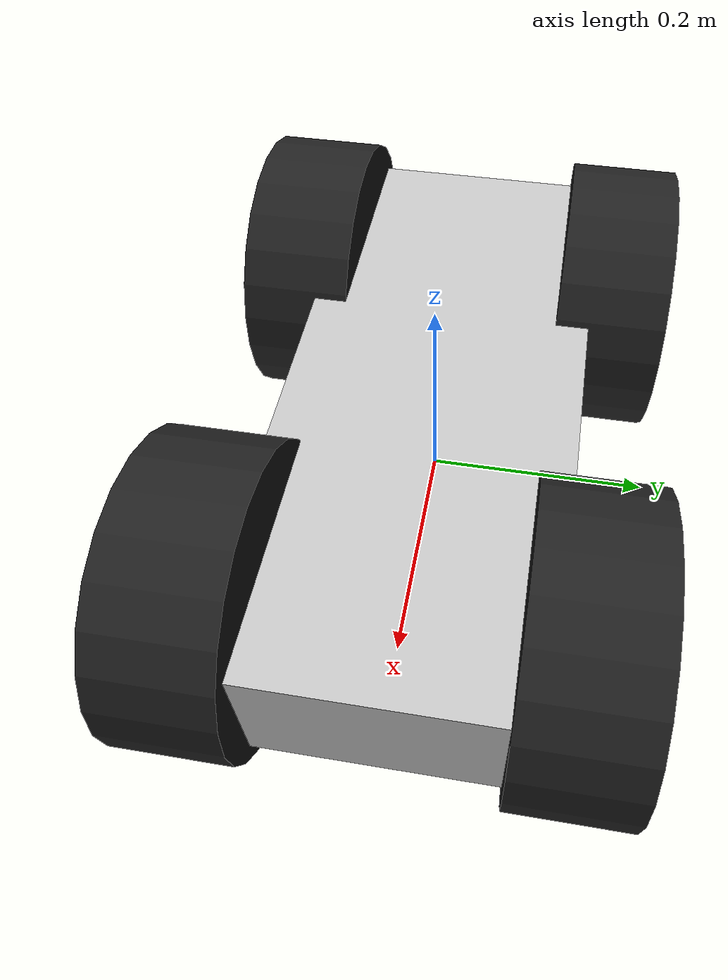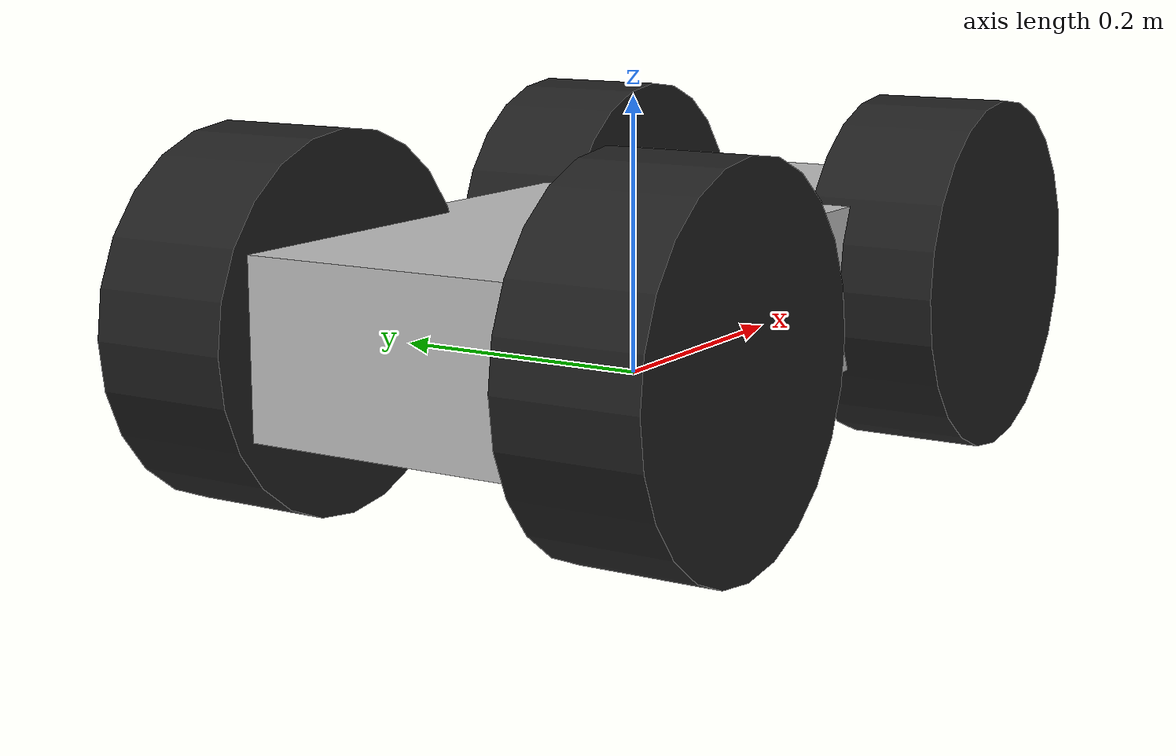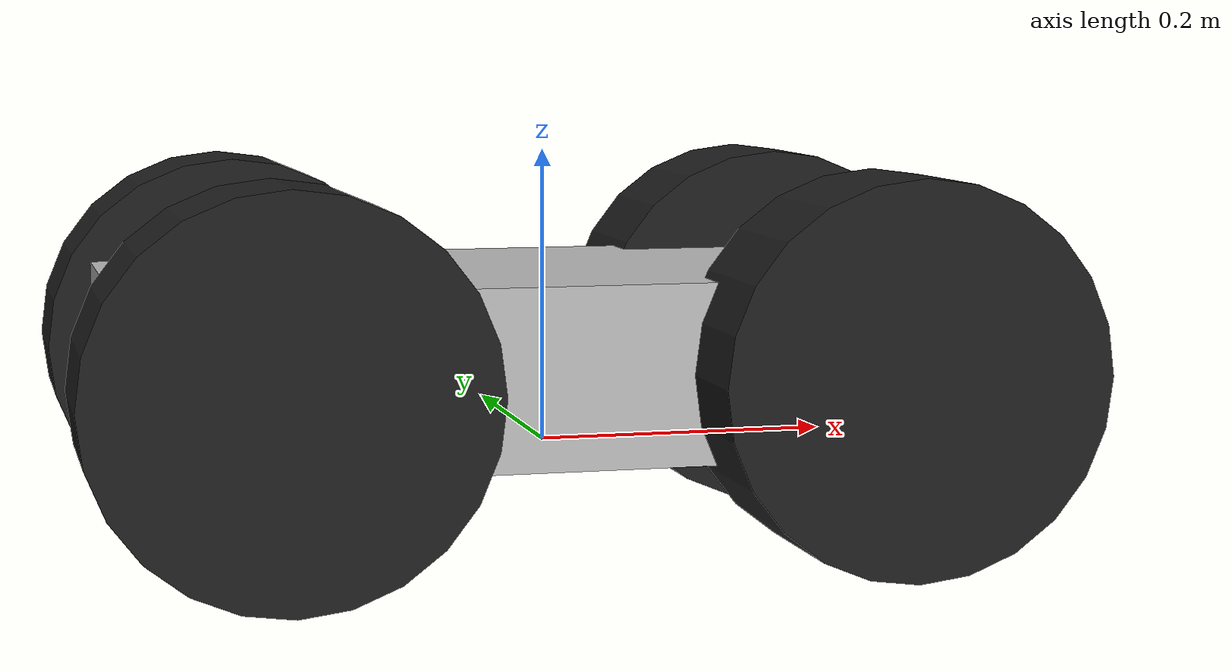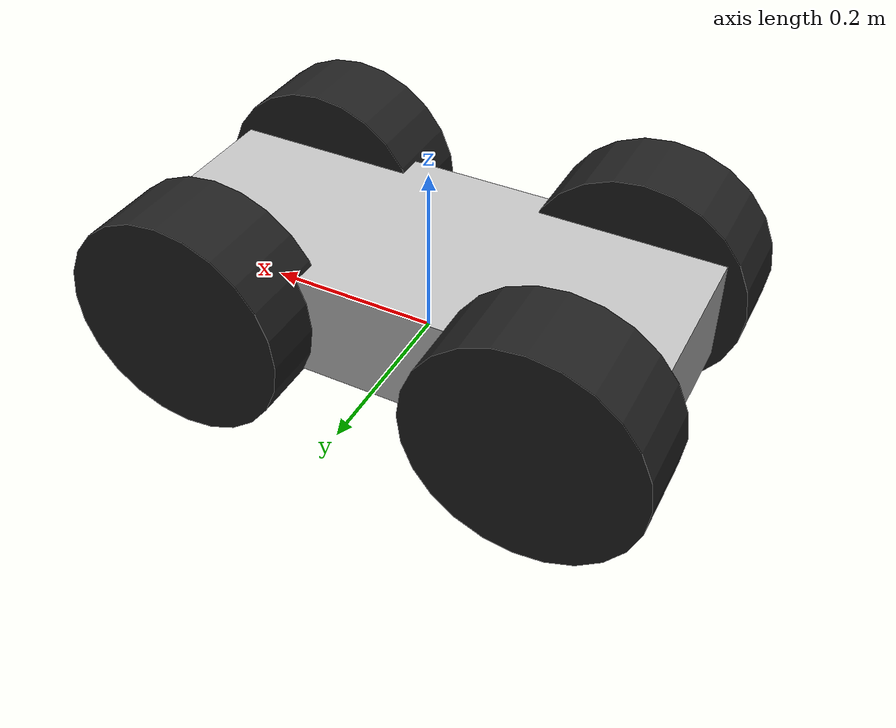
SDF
<sdf version='1.11'>
  <model name='arzhang4'>
    <link name='base_link'>
      <inertial>
        <pose>0 0 0.059999999999999998 0 0 0</pose>
        <mass>12</mass>
        <inertia>
          <ixx>0.20000000000000001</ixx>
          <ixy>0</ixy>
          <ixz>0</ixz>
          <iyy>0.34999999999999998</iyy>
          <iyz>0</iyz>
          <izz>0.45000000000000001</izz>
        </inertia>
      </inertial>
      <collision name='base_link_collision'>
        <pose>0 0 0.059999999999999998 0 0 0</pose>
        <geometry>
          <box>
            <size>0.59999999999999998 0.26000000000000001 0.12</size>
          </box>
        </geometry>
      </collision>
      <visual name='base_link_visual'>
        <pose>0 0 0.059999999999999998 0 0 0</pose>
        <geometry>
          <box>
            <size>0.59999999999999998 0.26000000000000001 0.12</size>
          </box>
        </geometry>
        <material>
          <diffuse>0.75000006 0.75000006 0.75000006 1</diffuse>
          <ambient>0.75000006 0.75000006 0.75000006 1</ambient>
        </material>
      </visual>
    </link>
    <joint name='wheel_fl_joint' type='revolute'>
      <pose relative_to='base_link'>0.20000000000000001 0.14999999999999999 0.059999999999999998 0 0 0</pose>
      <parent>base_link</parent>
      <child>wheel_fl</child>
      <axis>
        <xyz>0 1 0</xyz>
        <limit>
          <lower>-inf</lower>
          <upper>inf</upper>
        </limit>
        <dynamics>
          <spring_reference>0</spring_reference>
          <spring_stiffness>0</spring_stiffness>
        </dynamics>
      </axis>
    </joint>
    <link name='wheel_fl'>
      <pose relative_to='wheel_fl_joint'>0 0 0 0 0 0</pose>
      <inertial>
        <pose>0 0 0 0 0 0</pose>
        <mass>1</mass>
        <inertia>
          <ixx>0.001</ixx>
          <ixy>0</ixy>
          <ixz>0</ixz>
          <iyy>0.001</iyy>
          <iyz>0</iyz>
          <izz>0.001</izz>
        </inertia>
      </inertial>
      <collision name='wheel_fl_collision'>
        <pose>0 0 0 1.5708 0 0</pose>
        <geometry>
          <cylinder>
            <length>0.10000000000000001</length>
            <radius>0.13</radius>
          </cylinder>
        </geometry>
      </collision>
      <visual name='wheel_fl_visual'>
        <pose>0 0 0 1.5708 0 0</pose>
        <geometry>
          <cylinder>
            <length>0.10000000000000001</length>
            <radius>0.13</radius>
          </cylinder>
        </geometry>
        <material>
          <diffuse>0.125 0.125 0.125 1</diffuse>
          <ambient>0.125 0.125 0.125 1</ambient>
        </material>
      </visual>
    </link>
    <joint name='wheel_fr_joint' type='revolute'>
      <pose relative_to='base_link'>0.20000000000000001 -0.14999999999999999 0.059999999999999998 0 0 0</pose>
      <parent>base_link</parent>
      <child>wheel_fr</child>
      <axis>
        <xyz>0 1 0</xyz>
        <limit>
          <lower>-inf</lower>
          <upper>inf</upper>
        </limit>
        <dynamics>
          <spring_reference>0</spring_reference>
          <spring_stiffness>0</spring_stiffness>
        </dynamics>
      </axis>
    </joint>
    <link name='wheel_fr'>
      <pose relative_to='wheel_fr_joint'>0 0 0 0 0 0</pose>
      <inertial>
        <pose>0 0 0 0 0 0</pose>
        <mass>1</mass>
        <inertia>
          <ixx>0.001</ixx>
          <ixy>0</ixy>
          <ixz>0</ixz>
          <iyy>0.001</iyy>
          <iyz>0</iyz>
          <izz>0.001</izz>
        </inertia>
      </inertial>
      <collision name='wheel_fr_collision'>
        <pose>0 0 0 1.5708 0 0</pose>
        <geometry>
          <cylinder>
            <length>0.10000000000000001</length>
            <radius>0.13</radius>
          </cylinder>
        </geometry>
      </collision>
      <visual name='wheel_fr_visual'>
        <pose>0 0 0 1.5708 0 0</pose>
        <geometry>
          <cylinder>
            <length>0.10000000000000001</length>
            <radius>0.13</radius>
          </cylinder>
        </geometry>
        <material>
          <diffuse>0.125 0.125 0.125 1</diffuse>
          <ambient>0.125 0.125 0.125 1</ambient>
        </material>
      </visual>
    </link>
    <joint name='wheel_rl_joint' type='revolute'>
      <pose relative_to='base_link'>-0.20000000000000001 0.14999999999999999 0.059999999999999998 0 0 0</pose>
      <parent>base_link</parent>
      <child>wheel_rl</child>
      <axis>
        <xyz>0 1 0</xyz>
        <limit>
          <lower>-inf</lower>
          <upper>inf</upper>
        </limit>
        <dynamics>
          <spring_reference>0</spring_reference>
          <spring_stiffness>0</spring_stiffness>
        </dynamics>
      </axis>
    </joint>
    <link name='wheel_rl'>
      <pose relative_to='wheel_rl_joint'>0 0 0 0 0 0</pose>
      <inertial>
        <pose>0 0 0 0 0 0</pose>
        <mass>1</mass>
        <inertia>
          <ixx>0.001</ixx>
          <ixy>0</ixy>
          <ixz>0</ixz>
          <iyy>0.001</iyy>
          <iyz>0</iyz>
          <izz>0.001</izz>
        </inertia>
      </inertial>
      <collision name='wheel_rl_collision'>
        <pose>0 0 0 1.5708 0 0</pose>
        <geometry>
          <cylinder>
            <length>0.10000000000000001</length>
            <radius>0.13</radius>
          </cylinder>
        </geometry>
      </collision>
      <visual name='wheel_rl_visual'>
        <pose>0 0 0 1.5708 0 0</pose>
        <geometry>
          <cylinder>
            <length>0.10000000000000001</length>
            <radius>0.13</radius>
          </cylinder>
        </geometry>
        <material>
          <diffuse>0.125 0.125 0.125 1</diffuse>
          <ambient>0.125 0.125 0.125 1</ambient>
        </material>
      </visual>
    </link>
    <joint name='wheel_rr_joint' type='revolute'>
      <pose relative_to='base_link'>-0.20000000000000001 -0.14999999999999999 0.059999999999999998 0 0 0</pose>
      <parent>base_link</parent>
      <child>wheel_rr</child>
      <axis>
        <xyz>0 1 0</xyz>
        <limit>
          <lower>-inf</lower>
          <upper>inf</upper>
        </limit>
        <dynamics>
          <spring_reference>0</spring_reference>
          <spring_stiffness>0</spring_stiffness>
        </dynamics>
      </axis>
    </joint>
    <link name='wheel_rr'>
      <pose relative_to='wheel_rr_joint'>0 0 0 0 0 0</pose>
      <inertial>
        <pose>0 0 0 0 0 0</pose>
        <mass>1</mass>
        <inertia>
          <ixx>0.001</ixx>
          <ixy>0</ixy>
          <ixz>0</ixz>
          <iyy>0.001</iyy>
          <iyz>0</iyz>
          <izz>0.001</izz>
        </inertia>
      </inertial>
      <collision name='wheel_rr_collision'>
        <pose>0 0 0 1.5708 0 0</pose>
        <geometry>
          <cylinder>
            <length>0.10000000000000001</length>
            <radius>0.13</radius>
          </cylinder>
        </geometry>
      </collision>
      <visual name='wheel_rr_visual'>
        <pose>0 0 0 1.5708 0 0</pose>
        <geometry>
          <cylinder>
            <length>0.10000000000000001</length>
            <radius>0.13</radius>
          </cylinder>
        </geometry>
        <material>
          <diffuse>0.125 0.125 0.125 1</diffuse>
          <ambient>0.125 0.125 0.125 1</ambient>
        </material>
      </visual>
    </link>
    <plugin name='gz::sim::systems::DiffDrive' filename='gz-sim-diff-drive-system'>
      <left_joint>wheel_fl_joint</left_joint>
      <left_joint>wheel_rl_joint</left_joint>
      <right_joint>wheel_fr_joint</right_joint>
      <right_joint>wheel_rr_joint</right_joint>
      <wheel_separation>0.3</wheel_separation>
      <wheel_radius>0.1</wheel_radius>
      <topic>cmd_vel</topic>
      <odom_topic>odom</odom_topic>
      <odom_frame>odom</odom_frame>
      <robot_base_frame>base_link</robot_base_frame>
      <publish_tf>true</publish_tf>
    </plugin>
  </model>
</sdf>
